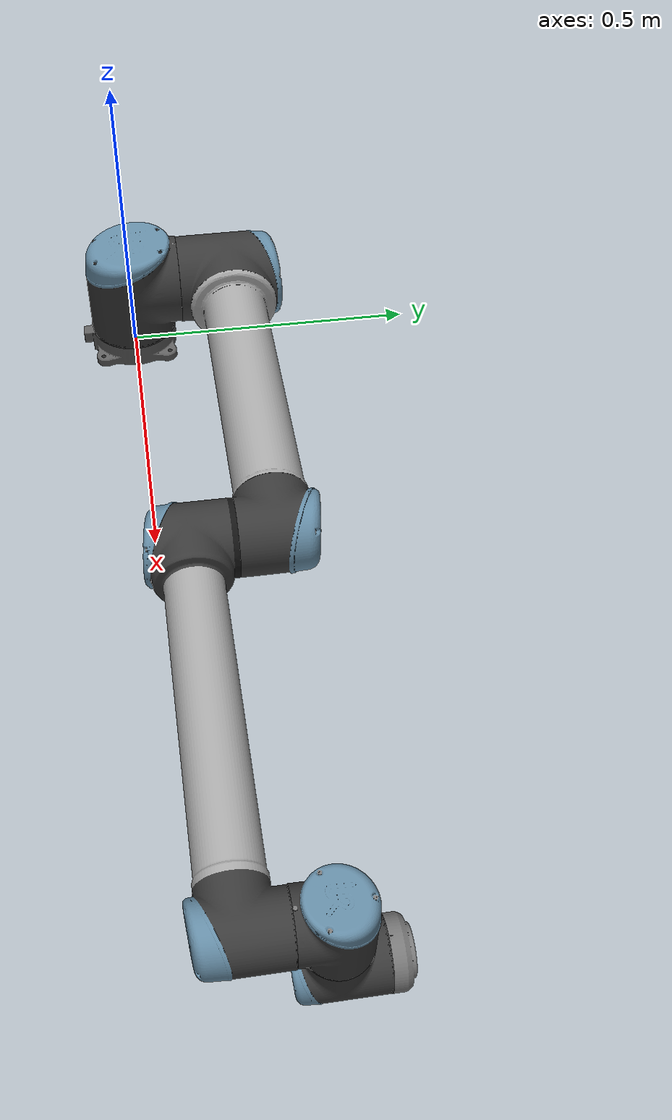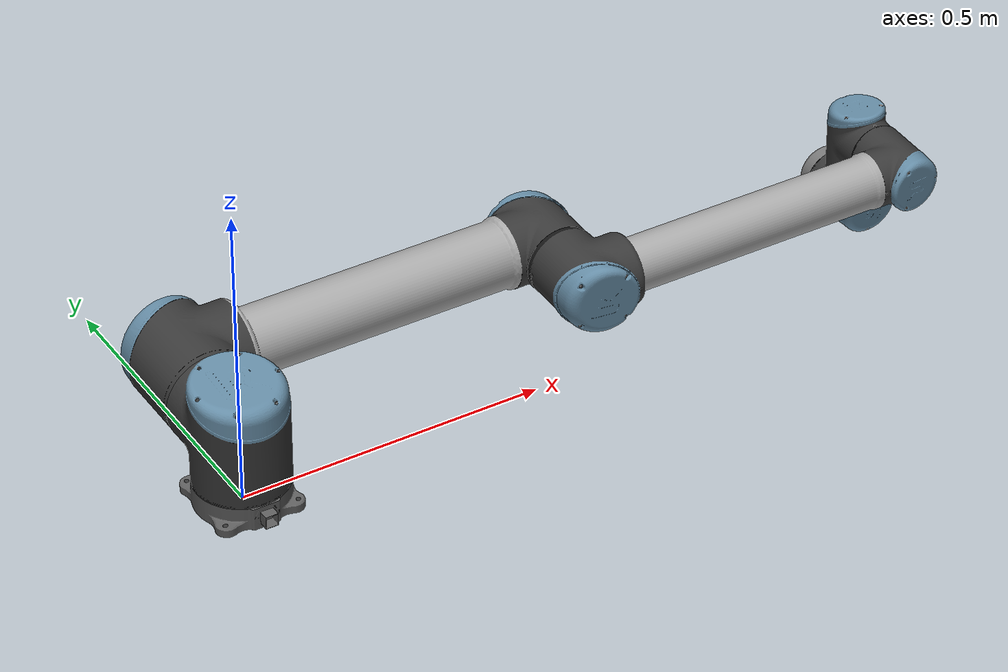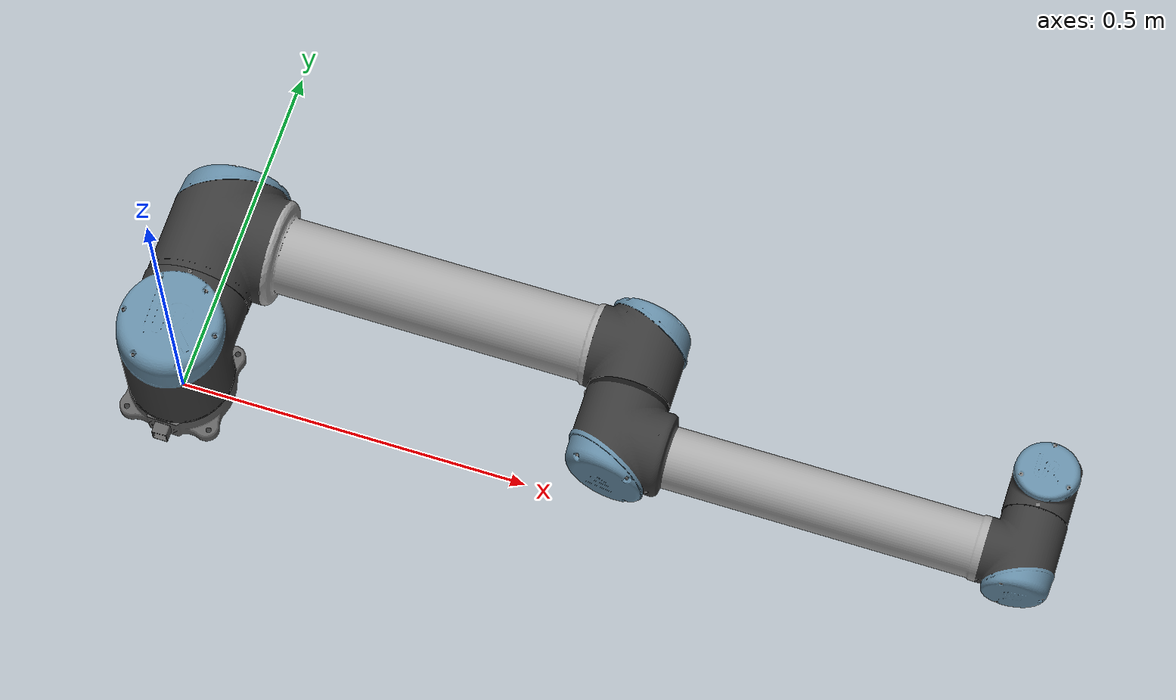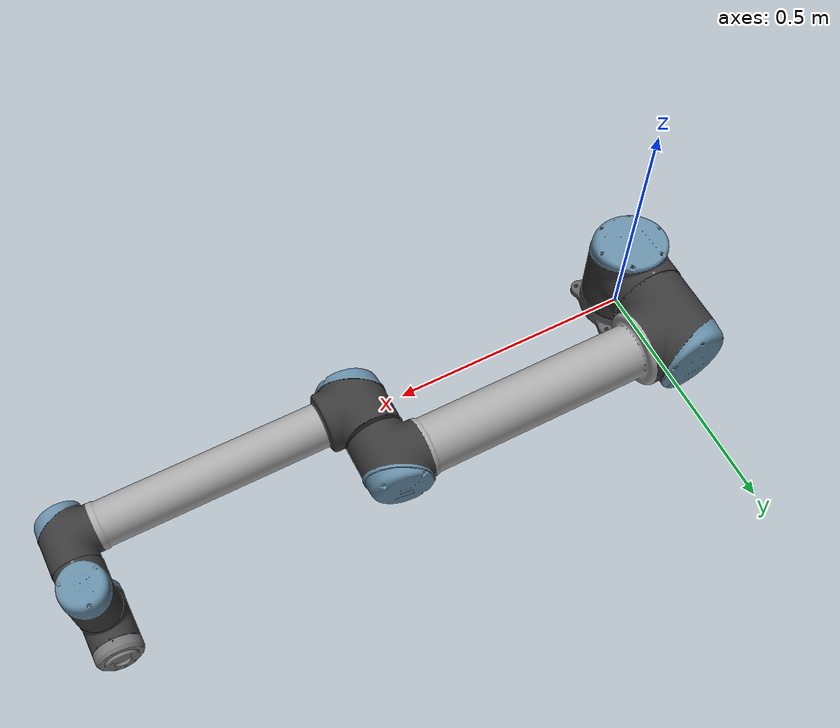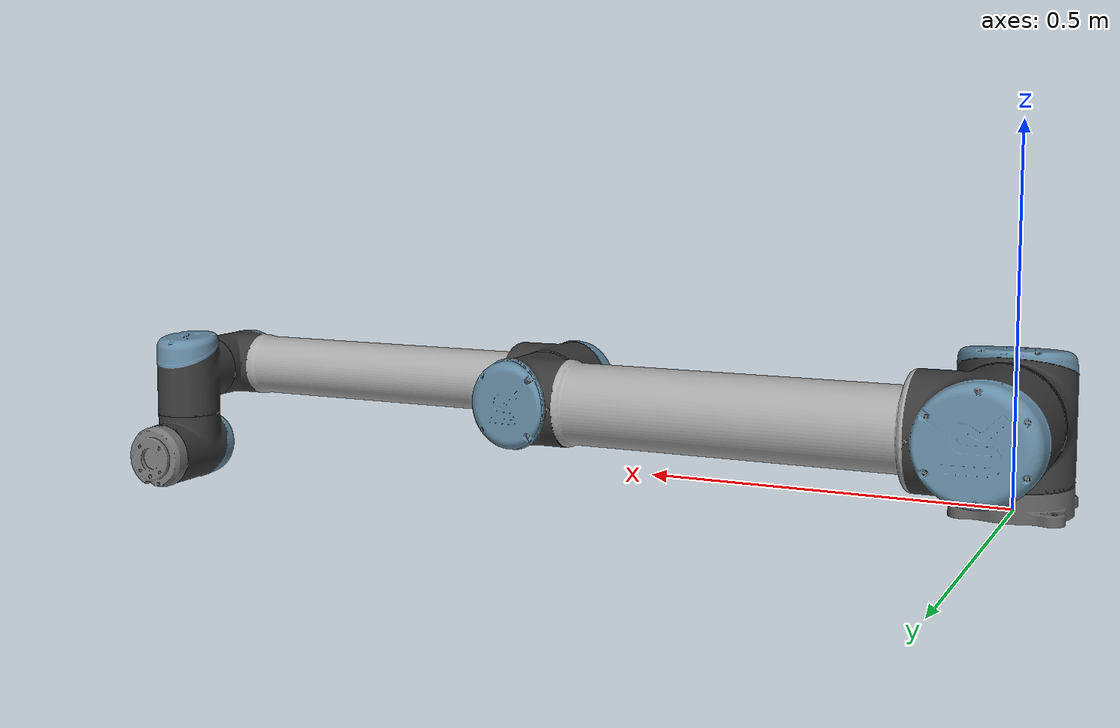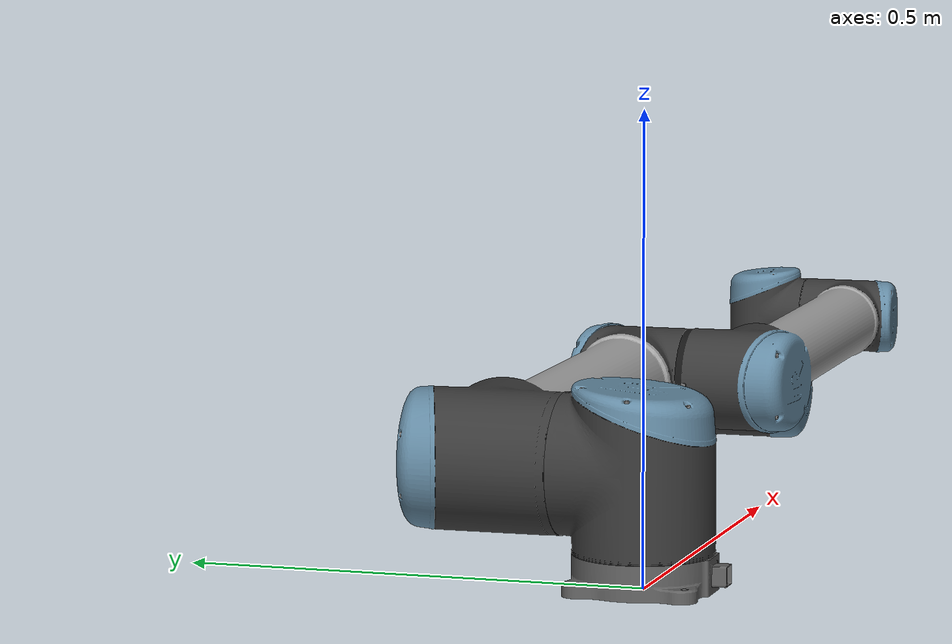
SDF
<?xml version="1.0" ?>
<sdf version="1.10">
    <model name="ur10">
        <joint name='base_joint' type='fixed'>
        <pose relative_to='__model__'>0 0 0 0 0 0</pose>
        <parent>world</parent>
        <child>base_link</child>
        </joint>
        <link name='base_link'>
        <pose relative_to='base_joint'>0 0 0 0 0 0</pose>
        <inertial>
            <pose>0 0 0 0 0 0</pose>
            <mass>4</mass>
            <inertia>
            <ixx>0.0061063308907999998</ixx>
            <ixy>0</ixy>
            <ixz>0</ixz>
            <iyy>0.0061063308907999998</iyy>
            <iyz>0</iyz>
            <izz>0.01125</izz>
            </inertia>
        </inertial>
        <collision name='base_link_inertia_collision'>
            <pose>0 0 0 0 0 -2.4492935982947059e-16</pose>
            <geometry>
            <mesh>
                <scale>1 1 1</scale>
                <uri>meshes/ur10/collision/base.stl</uri>
            </mesh>
            </geometry>
        </collision>
        <visual name='base_link_inertia_visual'>
            <pose>0 0 0 0 0 -2.4492935982947059e-16</pose>
            <geometry>
            <mesh>
                <scale>1 1 1</scale>
                <uri>meshes/ur10/visual/base.dae</uri>
            </mesh>
            </geometry>
        </visual>
        </link>
        <joint name='shoulder_pan_joint' type='revolute'>
        <pose relative_to='base_link'>0 0 0.1273 0 0 3.1415926535897931</pose>
        <parent>base_link</parent>
        <child>shoulder_link</child>
        <axis>
            <xyz>0 0 1</xyz>
            <limit>
            <lower>-6.2831853071795862</lower>
            <upper>6.2831853071795862</upper>
            <effort>330</effort>
            <velocity>2.0943951023931948</velocity>
            </limit>
            <dynamics>
            <damping>0</damping>
            <friction>0</friction>
            <spring_reference>0</spring_reference>
            <spring_stiffness>0</spring_stiffness>
            </dynamics>
        </axis>
        </joint>
        <link name='shoulder_link'>
        <pose relative_to='shoulder_pan_joint'>0 0 0 0 0 0</pose>
        <inertial>
            <pose>0.021000000000000001 -0.027 0 1.570796326794897 0 0</pose>
            <mass>7.0999999999999996</mass>
            <inertia>
            <ixx>0.034079999999999999</ixx>
            <ixy>2.0000000000000002e-05</ixy>
            <ixz>-0.0042500000000000003</ixz>
            <iyy>0.035290000000000002</iyy>
            <iyz>8.0000000000000007e-05</iyz>
            <izz>0.021559999999999999</izz>
            </inertia>
        </inertial>
        <collision name='shoulder_link_collision'>
            <pose>0 0 0 0 0 3.1415926535897931</pose>
            <geometry>
            <mesh>
                <scale>1 1 1</scale>
                <uri>meshes/ur10/collision/shoulder.stl</uri>
            </mesh>
            </geometry>
        </collision>
        <visual name='shoulder_link_visual'>
            <pose>0 0 0 0 0 3.1415926535897931</pose>
            <geometry>
            <mesh>
                <scale>1 1 1</scale>
                <uri>meshes/ur10/visual/shoulder.dae</uri>
            </mesh>
            </geometry>
        </visual>
        </link>
        <joint name='shoulder_lift_joint' type='revolute'>
        <pose relative_to='shoulder_link'>0 0 0 1.5707963270000003 0 0</pose>
        <parent>shoulder_link</parent>
        <child>upper_arm_link</child>
        <axis>
            <xyz>0 0 1</xyz>
            <limit>
            <lower>-6.2831853071795862</lower>
            <upper>6.2831853071795862</upper>
            <effort>330</effort>
            <velocity>2.0943951023931948</velocity>
            </limit>
            <dynamics>
            <damping>0</damping>
            <friction>0</friction>
            <spring_reference>0</spring_reference>
            <spring_stiffness>0</spring_stiffness>
            </dynamics>
        </axis>
        </joint>
        <link name='upper_arm_link'>
        <pose relative_to='shoulder_lift_joint'>0 0 0 0 0 0</pose>
        <inertial>
            <pose>-0.23200000000000001 0 0.158 0 0 0</pose>
            <mass>12.699999999999999</mass>
            <inertia>
            <ixx>0.028139999999999998</ixx>
            <ixy>5.0000000000000002e-05</ixy>
            <ixz>-0.015610000000000001</ixz>
            <iyy>0.77068000000000003</iyy>
            <iyz>2.0000000000000002e-05</iyz>
            <izz>0.76942999999999995</izz>
            </inertia>
        </inertial>
        <collision name='upper_arm_link_collision'>
            <pose>0 0 0.220941 1.5707963267948959 5.5511151231257827e-17 -1.5707963267948959</pose>
            <geometry>
            <mesh>
                <scale>1 1 1</scale>
                <uri>meshes/ur10/collision/upperarm.stl</uri>
            </mesh>
            </geometry>
        </collision>
        <visual name='upper_arm_link_visual'>
            <pose>0 0 0.220941 1.5707963267948959 5.5511151231257827e-17 -1.5707963267948959</pose>
            <geometry>
            <mesh>
                <scale>1 1 1</scale>
                <uri>meshes/ur10/visual/upperarm.dae</uri>
            </mesh>
            </geometry>
        </visual>
        </link>
        <joint name='elbow_joint' type='revolute'>
        <pose relative_to='upper_arm_link'>-0.61199999999999999 0 0 0 0 0</pose>
        <parent>upper_arm_link</parent>
        <child>forearm_link</child>
        <axis>
            <xyz>0 0 1</xyz>
            <limit>
            <lower>-3.1415926535897931</lower>
            <upper>3.1415926535897931</upper>
            <effort>150</effort>
            <velocity>3.1415926535897931</velocity>
            </limit>
            <dynamics>
            <damping>0</damping>
            <friction>0</friction>
            <spring_reference>0</spring_reference>
            <spring_stiffness>0</spring_stiffness>
            </dynamics>
        </axis>
        </joint>
        <link name='forearm_link'>
        <pose relative_to='elbow_joint'>0 0 0 0 0 0</pose>
        <inertial>
            <pose>-0.33229999999999998 0 0.068000000000000005 0 0 0</pose>
            <mass>4.2699999999999996</mass>
            <inertia>
            <ixx>0.01014</ixx>
            <ixy>8.0000000000000007e-05</ixy>
            <ixz>0.0091599999999999997</ixz>
            <iyy>0.30928</iyy>
            <iyz>0</iyz>
            <izz>0.30646000000000001</izz>
            </inertia>
        </inertial>
        <collision name='forearm_link_collision'>
            <pose>0 0 0.049042000000000002 1.5707963267948959 5.5511151231257827e-17 -1.5707963267948959</pose>
            <geometry>
            <mesh>
                <scale>1 1 1</scale>
                <uri>meshes/ur10/collision/forearm.stl</uri>
            </mesh>
            </geometry>
        </collision>
        <visual name='forearm_link_visual'>
            <pose>0 0 0.049042000000000002 1.5707963267948959 5.5511151231257827e-17 -1.5707963267948959</pose>
            <geometry>
            <mesh>
                <scale>1 1 1</scale>
                <uri>meshes/ur10/visual/forearm.dae</uri>
            </mesh>
            </geometry>
        </visual>
        </link>
        <joint name='wrist_1_joint' type='revolute'>
        <pose relative_to='forearm_link'>-0.57230000000000003 0 0.163941 0 0 0</pose>
        <parent>forearm_link</parent>
        <child>wrist_1_link</child>
        <axis>
            <xyz>0 0 1</xyz>
            <limit>
            <lower>-6.2831853071795862</lower>
            <upper>6.2831853071795862</upper>
            <effort>56</effort>
            <velocity>3.1415926535897931</velocity>
            </limit>
            <dynamics>
            <damping>0</damping>
            <friction>0</friction>
            <spring_reference>0</spring_reference>
            <spring_stiffness>0</spring_stiffness>
            </dynamics>
        </axis>
        </joint>
        <link name='wrist_1_link'>
        <pose relative_to='wrist_1_joint'>0 0 0 0 0 0</pose>
        <inertial>
            <pose>0 -0.017999999999999999 0.0070000000000000001 1.570796326794897 0 0</pose>
            <mass>2</mass>
            <inertia>
            <ixx>0.00296</ixx>
            <ixy>-1.0000000000000001e-05</ixy>
            <ixz>0</ixz>
            <iyy>0.0022200000000000002</iyy>
            <iyz>-0.00024000000000000001</iyz>
            <izz>0.0025799999999999998</izz>
            </inertia>
        </inertial>
        <collision name='wrist_1_link_collision'>
            <pose>0 0 -0.1149 1.5707963267948959 0 0</pose>
            <geometry>
            <mesh>
                <scale>1 1 1</scale>
                <uri>meshes/ur10/collision/wrist1.stl</uri>
            </mesh>
            </geometry>
        </collision>
        <visual name='wrist_1_link_visual'>
            <pose>0 0 -0.1149 1.5707963267948959 0 0</pose>
            <geometry>
            <mesh>
                <scale>1 1 1</scale>
                <uri>meshes/ur10/visual/wrist1.dae</uri>
            </mesh>
            </geometry>
        </visual>
        </link>
        <joint name='wrist_2_joint' type='revolute'>
        <pose relative_to='wrist_1_link'>0 -0.1157 -2.3730466679223811e-11 1.5707963270000003 0 0</pose>
        <parent>wrist_1_link</parent>
        <child>wrist_2_link</child>
        <axis>
            <xyz>0 0 1</xyz>
            <limit>
            <lower>-6.2831853071795862</lower>
            <upper>6.2831853071795862</upper>
            <effort>56</effort>
            <velocity>3.1415926535897931</velocity>
            </limit>
            <dynamics>
            <damping>0</damping>
            <friction>0</friction>
            <spring_reference>0</spring_reference>
            <spring_stiffness>0</spring_stiffness>
            </dynamics>
        </axis>
        </joint>
        <link name='wrist_2_link'>
        <pose relative_to='wrist_2_joint'>0 0 0 0 0 0</pose>
        <inertial>
            <pose>0 0.017999999999999999 -0.0070000000000000001 -1.570796326794897 0 0</pose>
            <mass>2</mass>
            <inertia>
            <ixx>0.00296</ixx>
            <ixy>-1.0000000000000001e-05</ixy>
            <ixz>0</ixz>
            <iyy>0.0022200000000000002</iyy>
            <iyz>-0.00024000000000000001</iyz>
            <izz>0.0025799999999999998</izz>
            </inertia>
        </inertial>
        <collision name='wrist_2_link_collision'>
            <pose>0 0 -0.1158 0 0 0</pose>
            <geometry>
            <mesh>
                <scale>1 1 1</scale>
                <uri>meshes/ur10/collision/wrist2.stl</uri>
            </mesh>
            </geometry>
        </collision>
        <visual name='wrist_2_link_visual'>
            <pose>0 0 -0.1158 0 0 0</pose>
            <geometry>
            <mesh>
                <scale>1 1 1</scale>
                <uri>meshes/ur10/visual/wrist2.dae</uri>
            </mesh>
            </geometry>
        </visual>
        </link>
        <joint name='wrist_3_joint' type='revolute'>
        <pose relative_to='wrist_2_link'>0 0.092200000000000004 -1.8910536109113529e-11 -1.5707963270000003 1.2246467991473527e-16 -1.224646799147353e-16</pose>
        <parent>wrist_2_link</parent>
        <child>wrist_3_link</child>
        <axis>
            <xyz>0 0 1</xyz>
            <limit>
            <lower>-6.2831853071795862</lower>
            <upper>6.2831853071795862</upper>
            <effort>56</effort>
            <velocity>3.1415926535897931</velocity>
            </limit>
            <dynamics>
            <damping>0</damping>
            <friction>0</friction>
            <spring_reference>0</spring_reference>
            <spring_stiffness>0</spring_stiffness>
            </dynamics>
        </axis>
        </joint>
        <link name='wrist_3_link'>
        <pose relative_to='wrist_3_joint'>0 0 0 0 0 0</pose>
        <inertial>
            <pose>0 0 -0.025999999999999999 0 0 0</pose>
            <mass>0.36499999999999999</mass>
            <inertia>
            <ixx>0.00040000000000000002</ixx>
            <ixy>0</ixy>
            <ixz>0</ixz>
            <iyy>0.00040999999999999999</iyy>
            <iyz>0</iyz>
            <izz>0.00034000000000000002</izz>
            </inertia>
        </inertial>
        <collision name='wrist_3_link_collision'>
            <pose>0 0 -0.092200000000000004 1.5707963267948959 0 0</pose>
            <geometry>
            <mesh>
                <scale>1 1 1</scale>
                <uri>meshes/ur10/collision/wrist3.stl</uri>
            </mesh>
            </geometry>
        </collision>
        <visual name='wrist_3_link_visual'>
            <pose>0 0 -0.092200000000000004 1.5707963267948959 0 0</pose>
            <geometry>
            <mesh>
                <scale>1 1 1</scale>
                <uri>meshes/ur10/visual/wrist3.dae</uri>
            </mesh>
            </geometry>
        </visual>
        </link>
        <frame name='base_link-base_fixed_joint' attached_to='base_link'>
        <pose>0 0 0 0 0 3.1415926535897931</pose>
        </frame>
        <frame name='base' attached_to='base_link-base_fixed_joint'>
        <pose>0 0 0 0 0 0</pose>
        </frame>
        <frame name='base_link-base_link_inertia' attached_to='base_link'>
        <pose>0 0 0 0 0 3.1415926535897931</pose>
        </frame>
        <frame name='base_link_inertia' attached_to='base_link-base_link_inertia'>
        <pose>0 0 0 0 0 0</pose>
        </frame>
        <frame name='flange-tool0' attached_to='flange'>
        <pose>0 0 0 1.5707963267948959 -5.5511151231257827e-17 1.5707963267948959</pose>
        </frame>
        <frame name='tool0' attached_to='flange-tool0'>
        <pose>0 0 0 0 0 0</pose>
        </frame>
        <frame name='wrist_3-flange' attached_to='wrist_3_link'>
        <pose>0 0 0 -1.5707963267948957 -1.5707963267948966 0</pose>
        </frame>
        <frame name='flange' attached_to='wrist_3-flange'>
        <pose>0 0 0 0 0 0</pose>
        </frame>
        <frame name='wrist_3_link-ft_frame' attached_to='wrist_3_link'>
        <pose>0 0 0 3.1415926535897931 0 0</pose>
        </frame>
        <frame name='ft_frame' attached_to='wrist_3_link-ft_frame'>
        <pose>0 0 0 0 0 0</pose>
        </frame>

    <!-- shoulder_pan_joint -->
    <plugin name="gz::sim::systems::JointPositionController" filename="gz-sim-joint-position-controller-system">
      <joint_name>shoulder_pan_joint</joint_name>
      <p_gain>200.0</p_gain>
      <d_gain>5.0</d_gain>
    </plugin>

    <!-- shoulder_lift_joint -->
    <plugin name="gz::sim::systems::JointPositionController" filename="gz-sim-joint-position-controller-system">
      <joint_name>shoulder_lift_joint</joint_name>
      <p_gain>200.0</p_gain>
      <d_gain>5.0</d_gain>
    </plugin>

    <!-- elbow_joint -->
    <plugin name="gz::sim::systems::JointPositionController" filename="gz-sim-joint-position-controller-system">
      <joint_name>elbow_joint</joint_name>
      <p_gain>180.0</p_gain>
      <d_gain>4.0</d_gain>
    </plugin>

    <!-- wrist_1_joint -->
    <plugin name="gz::sim::systems::JointPositionController" filename="gz-sim-joint-position-controller-system">
      <joint_name>wrist_1_joint</joint_name>
      <p_gain>120.0</p_gain>
      <d_gain>3.0</d_gain>
    </plugin>

    <!-- wrist_2_joint -->
    <plugin name="gz::sim::systems::JointPositionController" filename="gz-sim-joint-position-controller-system">
      <joint_name>wrist_2_joint</joint_name>
      <p_gain>120.0</p_gain>
      <d_gain>3.0</d_gain>
    </plugin>

    <!-- wrist_3_joint -->
    <plugin name="gz::sim::systems::JointPositionController" filename="gz-sim-joint-position-controller-system">
      <joint_name>wrist_3_joint</joint_name>
      <p_gain>80.0</p_gain>
      <d_gain>2.0</d_gain>
    </plugin>

    <!-- Optional: publish joint states at a fixed rate (if your world lacks it) -->
  </model>

  <!-- Keep the world pose defaulted; you can spawn with a pose via service if needed -->
  <pose>0 0 0 0 0 0</pose>
</sdf>
